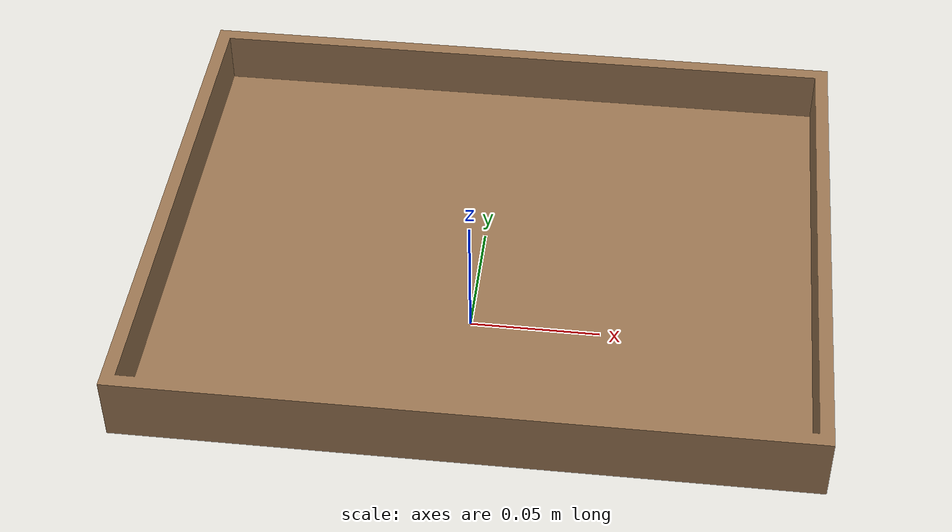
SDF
<?xml version="1.0" ?>
<sdf version="1.5">
  <model name="discard_box">
    <link name="link">
      <pose>0 0 0.031 0 0 0</pose>
      <inertial>
        <mass>5</mass>
        <inertia>
          <ixx>5</ixx>
          <ixy>0</ixy>
          <ixz>0</ixz>
          <iyy>5</iyy>
          <iyz>0</iyz>
          <izz>5</izz>
        </inertia>
      </inertial>
      <collision name="collision">
        <geometry>
		  <mesh>
		    <uri>model://discard_box/meshes/discard_box.dae</uri>
		  </mesh>
        </geometry>
      </collision>
      <visual name="visual">
        <geometry>
          <mesh>
            <uri>model://discard_box/meshes/discard_box.dae</uri>
          </mesh>
        </geometry>
        <material>
          <ambient>0.4 0.26 0.12 1</ambient>
          <diffuse>0.6 0.46 0.32 1</diffuse>
        </material>
      </visual>
    </link>
  </model>
</sdf>
